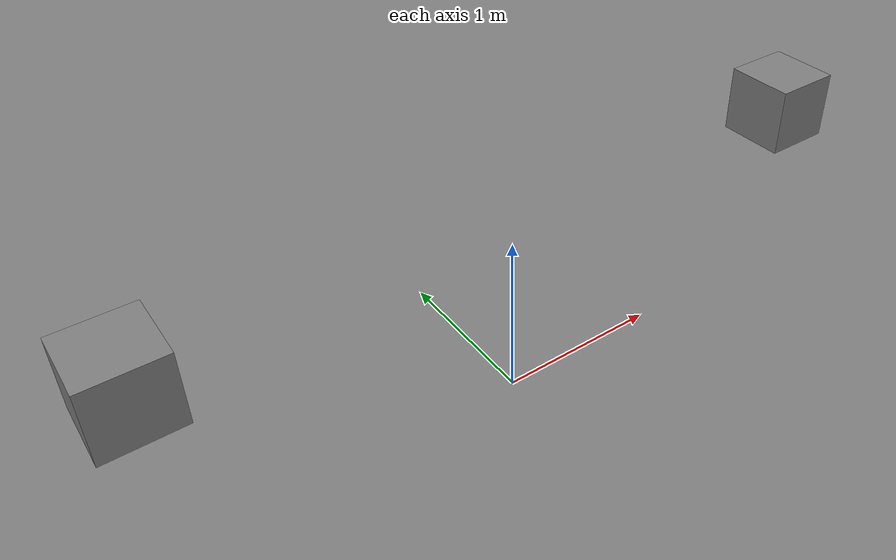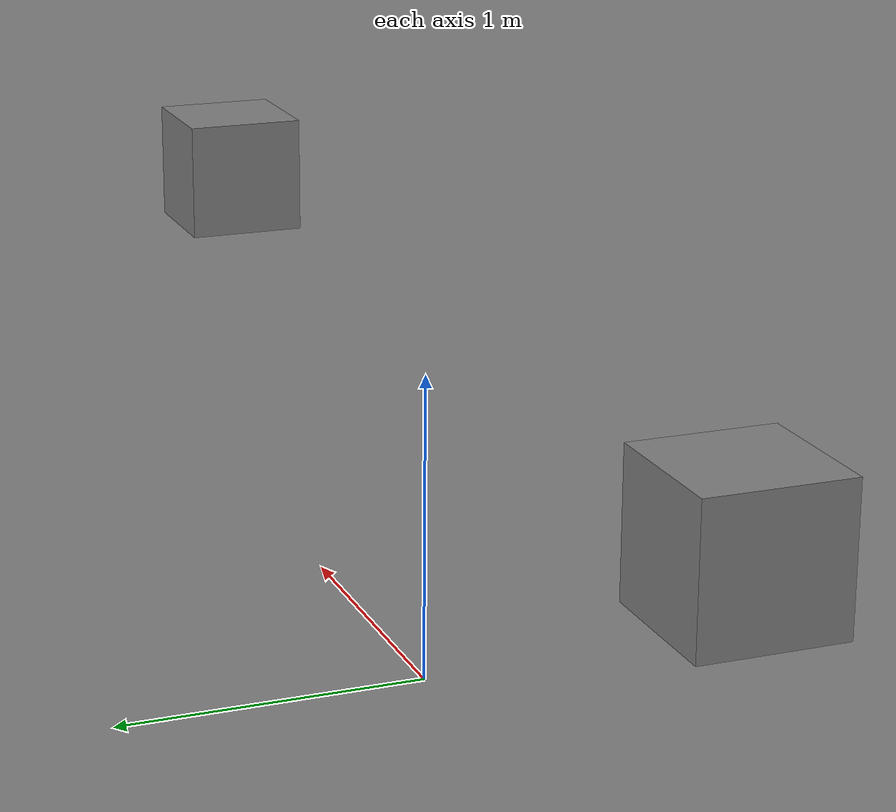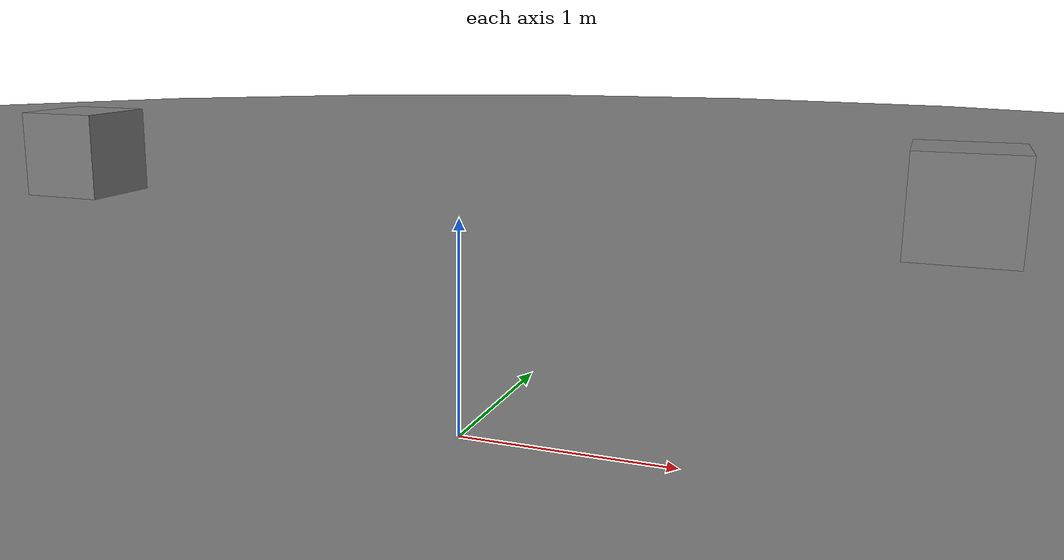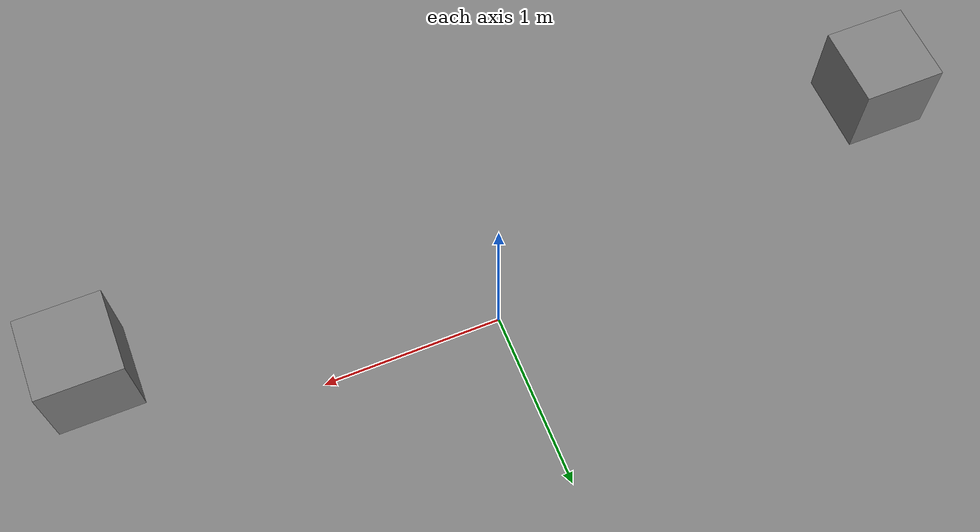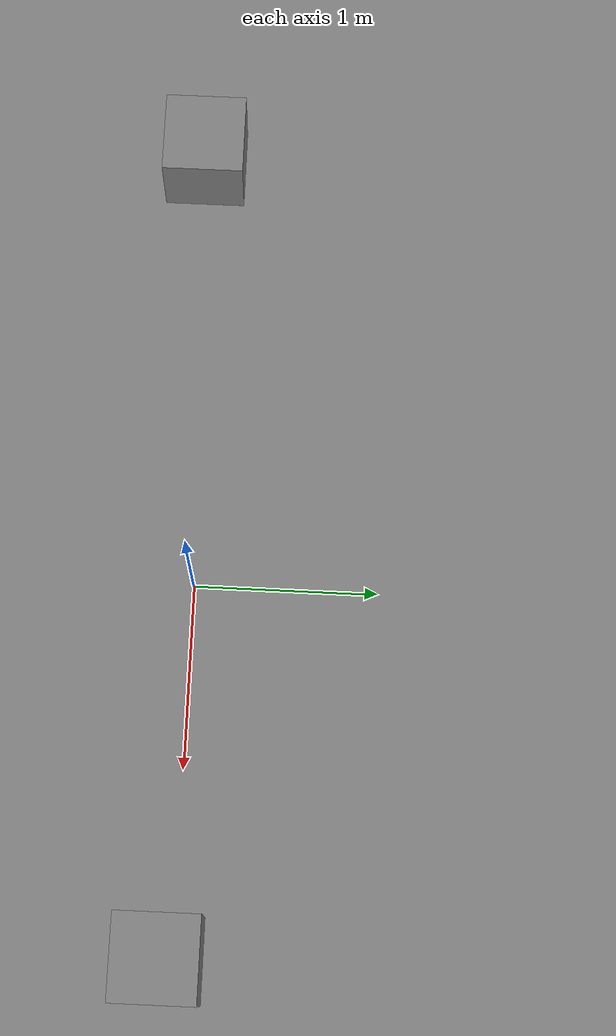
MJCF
<mujoco>
  <option timestep="0.00025"/>
  <worldbody>
    <geom name="sumo_ring" type="cylinder" size="7.5 1" condim="3" friction="0.8 9 9"/>
    <body name="red_root" pos="-2 0 1.2">
      <freejoint/>
      <geom name="red_chassis" type="box" size="0.2 0.2 0.2" mass="50" condim="1" friction="0.6 8 8" priority="1"/>
      <body name="red_rotor"><joint name="red_hinge"/><geom type="sphere" size="0.05" mass="1"/></body>
    </body>
    <body name="blue_root" pos="2 0 1.2">
      <freejoint/>
      <geom name="blue_chassis" type="box" size="0.2 0.2 0.2" mass="50" condim="4" friction="0.4 7 7" priority="2"/>
      <body name="blue_rotor"><joint name="blue_hinge"/><geom type="sphere" size="0.05" mass="1"/></body>
    </body>
  </worldbody>
  <contact><pair geom1="red_chassis" geom2="blue_chassis" condim="3" friction="9 9 9 9 9"/></contact>
  <actuator><motor name="red_motor" joint="red_hinge"/><motor name="blue_motor" joint="blue_hinge"/></actuator>
</mujoco>
